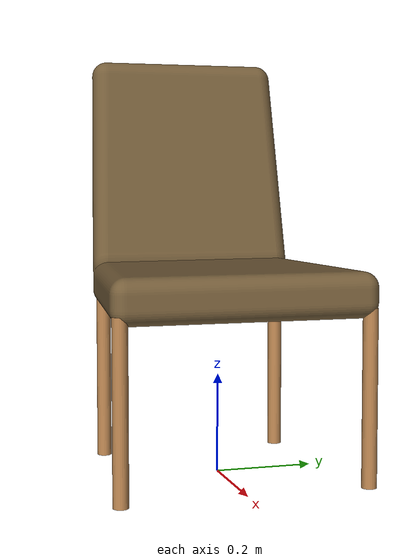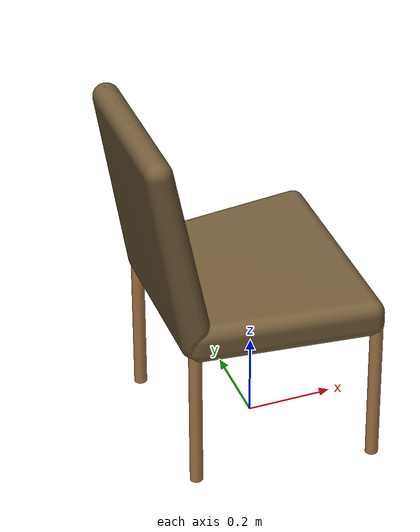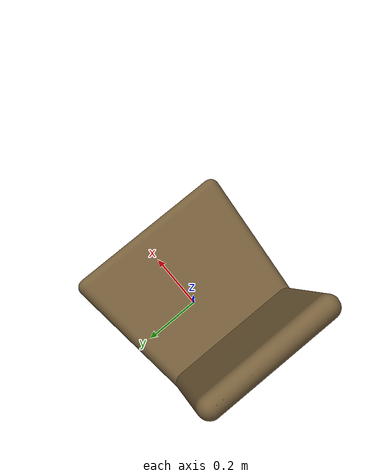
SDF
<?xml version="1.0" ?>
<sdf version="1.4">
    <model name='kitchen_chair'>
      <link name='link'>
        <pose>0.0 0.0 0.33 0 0 0</pose>
        <inertial>
          <mass>10.0</mass>
          <inertia>
            <ixx>1</ixx>
            <ixy>0</ixy>
            <ixz>0</ixz>
            <iyy>1</iyy>
            <iyz>0</iyz>
            <izz>1</izz>
          </inertia>
        </inertial>
        <visual name='chair'>
          <pose>0.0 0.0 0.0 0 0 0</pose>
          <geometry>
            <mesh>
              <uri>model://kitchen_chair/meshes/chair_seat.dae</uri>
            </mesh>
          </geometry>
          <material>
            <!-- color:wheat -->
            <ambient>0.913 0.73 0.451 1</ambient>
            <diffuse>0.4565 0.365 0.2255 1</diffuse>
            <specular>0.1 0.1 0.1 1</specular>
            <emissive>0 0 0 0</emissive>
          </material>
        </visual>
        <collision name='collision_chair'>
          <pose>0.0 0.0 0.0 0 0 0</pose>
          <geometry>
            <mesh>
              <uri>model://kitchen_chair/meshes/chair_seat.dae</uri>
            </mesh>
          </geometry>
          <max_contacts>10</max_contacts>
          <surface>
            <bounce/>
            <friction>
              <ode/>
            </friction>
            <contact>
              <ode/>
            </contact>
          </surface>
        </collision>
        <visual name='front_right_frame'>
          <pose>0.205 0.245 -0.155 0 0 0</pose>
          <geometry>
            <cylinder>
              <radius>0.015</radius>
              <length>0.35</length>
            </cylinder>
          </geometry>
          <material>
            <script>
              <uri>model://base_materials/wood/scripts/wood.material</uri>
              <name>base_materials/wood</name>
            </script>
          </material>
        </visual>
        <collision name='collision_front_right_frame'>
          <pose>0.205 0.245 -0.155 0 0 0</pose>
          <geometry>
            <cylinder>
              <radius>0.01</radius>
              <length>0.35</length>
            </cylinder>
          </geometry>
          <max_contacts>10</max_contacts>
          <surface>
            <bounce/>
            <friction>
              <ode/>
            </friction>
            <contact>
              <ode/>
            </contact>
          </surface>
        </collision>
        <visual name='front_left_frame'>
          <pose>0.205 -0.245 -0.155 0 0 0</pose>
          <geometry>
            <cylinder>
              <radius>0.015</radius>
              <length>0.35</length>
            </cylinder>
          </geometry>
          <material>
            <script>
              <uri>model://base_materials/wood/scripts/wood.material</uri>
              <name>base_materials/wood</name>
            </script>
          </material>
        </visual>
        <collision name='collision_front_left_frame'>
          <pose>0.205 -0.245 -0.155 0 0 0</pose>
          <geometry>
            <cylinder>
              <radius>0.015</radius>
              <length>0.35</length>
            </cylinder>
          </geometry>
          <max_contacts>10</max_contacts>
          <surface>
            <bounce/>
            <friction>
              <ode/>
            </friction>
            <contact>
              <ode/>
            </contact>
          </surface>
        </collision>
        <visual name='back_right_frame'>
          <pose>-0.205 0.195 -0.155 0 0 0</pose>
          <geometry>
            <cylinder>
              <radius>0.015</radius>
              <length>0.35</length>
            </cylinder>
          </geometry>
          <material>
            <script>
              <uri>model://base_materials/wood/scripts/wood.material</uri>
              <name>base_materials/wood</name>
            </script>
          </material>
        </visual>
        <collision name='collision_back_right_frame'>
          <pose>-0.205 0.195 -0.155 0 0 0</pose>
          <geometry>
            <cylinder>
              <radius>0.015</radius>
              <length>0.35</length>
            </cylinder>
          </geometry>
          <max_contacts>10</max_contacts>
          <surface>
            <bounce/>
            <friction>
              <ode/>
            </friction>
            <contact>
              <ode/>
            </contact>
          </surface>
        </collision>
        <visual name='back_left_frame'>
          <pose>-0.205 -0.195 -0.155 0 0 0</pose>
          <geometry>
            <cylinder>
              <radius>0.015</radius>
              <length>0.35</length>
            </cylinder>
          </geometry>
          <material>
            <script>
              <uri>model://base_materials/wood/scripts/wood.material</uri>
              <name>base_materials/wood</name>
            </script>
          </material>
        </visual>
        <collision name='collision_back_left_frame'>
          <pose>-0.205 -0.195 -0.155 0 0 0</pose>
          <geometry>
            <cylinder>
              <radius>0.015</radius>
              <length>0.35</length>
            </cylinder>
          </geometry>
          <max_contacts>10</max_contacts>
          <surface>
            <bounce/>
            <friction>
              <ode/>
            </friction>
            <contact>
              <ode/>
            </contact>
          </surface>
        </collision>
        <velocity_decay>
          <linear>0</linear>
          <angular>0</angular>
        </velocity_decay>
        <self_collide>0</self_collide>
        <kinematic>0</kinematic>
        <gravity>1</gravity>
      </link>
      <static>1</static>
    </model>
</sdf>
